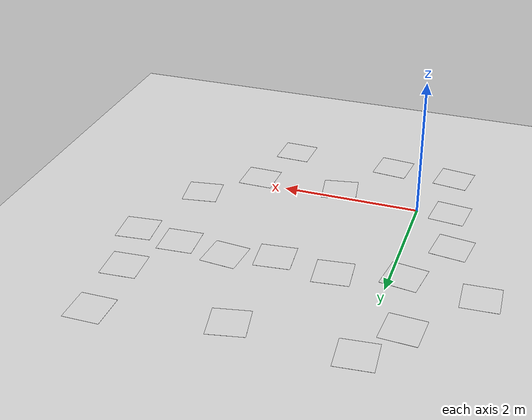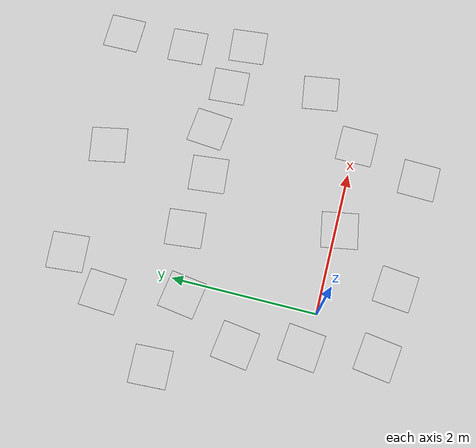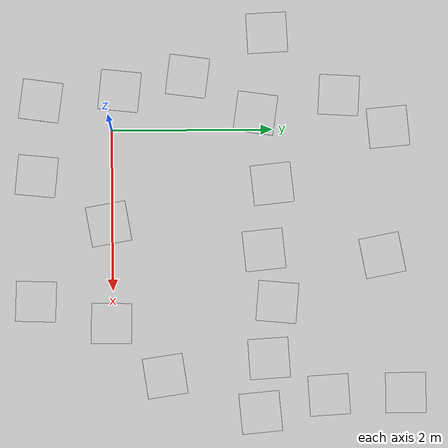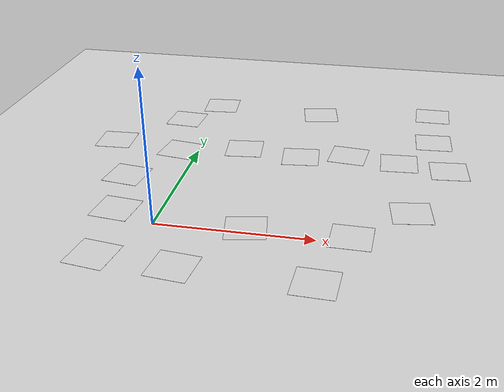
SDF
<sdf version="1.7">
 <world name="default">
  <plugin filename="gz-sim-physics-system" name="gz::sim::systems::Physics"/>
  <plugin filename="gz-sim-scene-broadcaster-system" name="gz::sim::systems::SceneBroadcaster"/>
  <plugin filename="gz-sim-user-commands-system" name="gz::sim::systems::UserCommands"/>
  <plugin filename="gz-sim-sensors-system" name="gz::sim::systems::Sensors">
   <render_engine>ogre2</render_engine>
  </plugin>
  <light name="sun" type="directional">
   <cast_shadows>0</cast_shadows>
   <intensity>3</intensity>
   <pose>0 0 10 0 -0 0</pose>
   <diffuse>0.8 0.8 0.8 1</diffuse>
   <specular>0.2 0.2 0.2 1</specular>
   <attenuation>
    <range>1000</range>
    <constant>0.9</constant>
    <linear>0.01</linear>
    <quadratic>0.001</quadratic>
   </attenuation>
   <direction>-0.5 0.1 -0.9</direction>
   <spot><inner_angle>0</inner_angle><outer_angle>0</outer_angle><falloff>0</falloff></spot>
  </light>
  <model name="ground_plane">
   <static>1</static>
   <link name="link">
    <collision name="collision">
     <geometry><plane><normal>0 0 1</normal><size>100 100</size></plane></geometry>
     <surface>
      <contact><collide_bitmask>65535</collide_bitmask></contact>
      <friction><ode><mu>100</mu><mu2>50</mu2></ode></friction>
     </surface>
    </collision>
    <visual name="visual">
     <cast_shadows>0</cast_shadows>
     <geometry><plane><normal>0 0 1</normal><size>100 100</size></plane></geometry>
     <material>
      <script><uri>file://media/materials/scripts/gazebo.material</uri><name>Gazebo/Grey</name></script>
     </material>
    </visual>
   </link>
  </model>
  <gravity>0 0 -9.8</gravity>
  <magnetic_field>6e-06 2.3e-05 -4.2e-05</magnetic_field>
  <atmosphere type="adiabatic"/>
  <physics type="ode">
   <max_step_size>0.001</max_step_size>
   <real_time_factor>1</real_time_factor>
   <real_time_update_rate>1000</real_time_update_rate>
  </physics>
  <scene><ambient>0.4 0.4 0.4 1</ambient><background>0.7 0.7 0.7 1</background><shadows>1</shadows></scene>
  <spherical_coordinates>
   <surface_model>EARTH_WGS84</surface_model>
   <latitude_deg>0</latitude_deg>
   <longitude_deg>0</longitude_deg>
   <elevation>0</elevation>
   <heading_deg>0</heading_deg>
  </spherical_coordinates>
  <model name="asphalt_plane">
   <static>1</static>
   <link name="link">
    <collision name="collision"><geometry><box><size>20 20 0.1</size></box></geometry></collision>
    <visual name="visual">
     <cast_shadows>0</cast_shadows>
     <geometry><box><size>20 20 0.1</size></box></geometry>
     <material>
      <ambient>0.8 0.8 0.8 1</ambient>
      <diffuse>0.8 0.8 0.8 1</diffuse>
      <specular>0.5 0.5 0.5 1</specular>
      <pbr><metal><albedo_map>model://asphalt_plane/tarmac.png</albedo_map></metal></pbr>
     </material>
    </visual>
   </link>
  </model>
  <model name="ArUco_0">
   <static>true</static>
   <pose>2.13 -0.957 0.11 0 0 -0.0317</pose>
   <link name="link">
    <collision name="collision">
     <geometry><plane><normal>0 0 1</normal><size>0.5 0.5</size></plane></geometry>
     <surface><friction><ode><mu>100</mu><mu2>50</mu2></ode></friction></surface>
    </collision>
    <visual name="visual">
     <cast_shadows>false</cast_shadows>
     <geometry><plane><normal>0 0 1</normal><size>0.5 0.5</size></plane></geometry>
     <material>
      <ambient>0.8 0.8 0.8 1</ambient>
      <diffuse>0.8 0.8 0.8 1</diffuse>
      <specular>0.5 0.5 0.5 1</specular>
      <pbr><metal><albedo_map>model://ArUco/4X4_1000-0.png</albedo_map></metal></pbr>
     </material>
    </visual>
   </link>
  </model>
  <model name="ArUco_1">
   <static>true</static>
   <pose>0.565 -0.94 0.11 0 0 -0.102</pose>
   <link name="link">
    <collision name="collision">
     <geometry><plane><normal>0 0 1</normal><size>0.5 0.5</size></plane></geometry>
     <surface><friction><ode><mu>100</mu><mu2>50</mu2></ode></friction></surface>
    </collision>
    <visual name="visual">
     <cast_shadows>false</cast_shadows>
     <geometry><plane><normal>0 0 1</normal><size>0.5 0.5</size></plane></geometry>
     <material>
      <ambient>0.8 0.8 0.8 1</ambient>
      <diffuse>0.8 0.8 0.8 1</diffuse>
      <specular>0.5 0.5 0.5 1</specular>
      <pbr><metal><albedo_map>model://ArUco/4X4_1000-1.png</albedo_map></metal></pbr>
     </material>
    </visual>
   </link>
  </model>
  <model name="ArUco_2">
   <static>true</static>
   <pose>3.3 3.62 0.11 0 0 0.00088</pose>
   <link name="link">
    <collision name="collision">
     <geometry><plane><normal>0 0 1</normal><size>0.5 0.5</size></plane></geometry>
     <surface><friction><ode><mu>100</mu><mu2>50</mu2></ode></friction></surface>
    </collision>
    <visual name="visual">
     <cast_shadows>false</cast_shadows>
     <geometry><plane><normal>0 0 1</normal><size>0.5 0.5</size></plane></geometry>
     <material>
      <ambient>0.8 0.8 0.8 1</ambient>
      <diffuse>0.8 0.8 0.8 1</diffuse>
      <specular>0.5 0.5 0.5 1</specular>
      <pbr><metal><albedo_map>model://ArUco/4X4_1000-2.png</albedo_map></metal></pbr>
     </material>
    </visual>
   </link>
  </model>
  <model name="ArUco_3">
   <static>true</static>
   <pose>1.59 3.35 0.11 0 0 0.191</pose>
   <link name="link">
    <collision name="collision">
     <geometry><plane><normal>0 0 1</normal><size>0.5 0.5</size></plane></geometry>
     <surface><friction><ode><mu>100</mu><mu2>50</mu2></ode></friction></surface>
    </collision>
    <visual name="visual">
     <cast_shadows>false</cast_shadows>
     <geometry><plane><normal>0 0 1</normal><size>0.5 0.5</size></plane></geometry>
     <material>
      <ambient>0.8 0.8 0.8 1</ambient>
      <diffuse>0.8 0.8 0.8 1</diffuse>
      <specular>0.5 0.5 0.5 1</specular>
      <pbr><metal><albedo_map>model://ArUco/4X4_1000-3.png</albedo_map></metal></pbr>
     </material>
    </visual>
   </link>
  </model>
  <model name="ArUco_4">
   <static>true</static>
   <pose>-0.376 -0.884 0.11 0 0 -0.138</pose>
   <link name="link">
    <collision name="collision">
     <geometry><plane><normal>0 0 1</normal><size>0.5 0.5</size></plane></geometry>
     <surface><friction><ode><mu>100</mu><mu2>50</mu2></ode></friction></surface>
    </collision>
    <visual name="visual">
     <cast_shadows>false</cast_shadows>
     <geometry><plane><normal>0 0 1</normal><size>0.5 0.5</size></plane></geometry>
     <material>
      <ambient>0.8 0.8 0.8 1</ambient>
      <diffuse>0.8 0.8 0.8 1</diffuse>
      <specular>0.5 0.5 0.5 1</specular>
      <pbr><metal><albedo_map>model://ArUco/4X4_1000-4.png</albedo_map></metal></pbr>
     </material>
    </visual>
   </link>
  </model>
  <model name="ArUco_5">
   <static>true</static>
   <pose>0.686 1.99 0.11 0 0 0.105</pose>
   <link name="link">
    <collision name="collision">
     <geometry><plane><normal>0 0 1</normal><size>0.5 0.5</size></plane></geometry>
     <surface><friction><ode><mu>100</mu><mu2>50</mu2></ode></friction></surface>
    </collision>
    <visual name="visual">
     <cast_shadows>false</cast_shadows>
     <geometry><plane><normal>0 0 1</normal><size>0.5 0.5</size></plane></geometry>
     <material>
      <ambient>0.8 0.8 0.8 1</ambient>
      <diffuse>0.8 0.8 0.8 1</diffuse>
      <specular>0.5 0.5 0.5 1</specular>
      <pbr><metal><albedo_map>model://ArUco/4X4_1000-5.png</albedo_map></metal></pbr>
     </material>
    </visual>
   </link>
  </model>
  <model name="ArUco_6">
   <static>true</static>
   <pose>1.51 1.88 0.11 0 0 0.0995</pose>
   <link name="link">
    <collision name="collision">
     <geometry><plane><normal>0 0 1</normal><size>0.5 0.5</size></plane></geometry>
     <surface><friction><ode><mu>100</mu><mu2>50</mu2></ode></friction></surface>
    </collision>
    <visual name="visual">
     <cast_shadows>false</cast_shadows>
     <geometry><plane><normal>0 0 1</normal><size>0.5 0.5</size></plane></geometry>
     <material>
      <ambient>0.8 0.8 0.8 1</ambient>
      <diffuse>0.8 0.8 0.8 1</diffuse>
      <specular>0.5 0.5 0.5 1</specular>
      <pbr><metal><albedo_map>model://ArUco/4X4_1000-6.png</albedo_map></metal></pbr>
     </material>
    </visual>
   </link>
  </model>
  <model name="ArUco_7">
   <static>true</static>
   <pose>3.32 2.67 0.11 0 0 0.0604</pose>
   <link name="link">
    <collision name="collision">
     <geometry><plane><normal>0 0 1</normal><size>0.5 0.5</size></plane></geometry>
     <surface><friction><ode><mu>100</mu><mu2>50</mu2></ode></friction></surface>
    </collision>
    <visual name="visual">
     <cast_shadows>false</cast_shadows>
     <geometry><plane><normal>0 0 1</normal><size>0.5 0.5</size></plane></geometry>
     <material>
      <ambient>0.8 0.8 0.8 1</ambient>
      <diffuse>0.8 0.8 0.8 1</diffuse>
      <specular>0.5 0.5 0.5 1</specular>
      <pbr><metal><albedo_map>model://ArUco/4X4_1000-7.png</albedo_map></metal></pbr>
     </material>
    </visual>
   </link>
  </model>
  <model name="ArUco_8">
   <static>true</static>
   <pose>1.17 -0.0484 0.11 0 0 0.174</pose>
   <link name="link">
    <collision name="collision">
     <geometry><plane><normal>0 0 1</normal><size>0.5 0.5</size></plane></geometry>
     <surface><friction><ode><mu>100</mu><mu2>50</mu2></ode></friction></surface>
    </collision>
    <visual name="visual">
     <cast_shadows>false</cast_shadows>
     <geometry><plane><normal>0 0 1</normal><size>0.5 0.5</size></plane></geometry>
     <material>
      <ambient>0.8 0.8 0.8 1</ambient>
      <diffuse>0.8 0.8 0.8 1</diffuse>
      <specular>0.5 0.5 0.5 1</specular>
      <pbr><metal><albedo_map>model://ArUco/4X4_1000-8.png</albedo_map></metal></pbr>
     </material>
    </visual>
   </link>
  </model>
  <model name="ArUco_9">
   <static>true</static>
   <pose>-0.0121 3.44 0.11 0 0 0.0876</pose>
   <link name="link">
    <collision name="collision">
     <geometry><plane><normal>0 0 1</normal><size>0.5 0.5</size></plane></geometry>
     <surface><friction><ode><mu>100</mu><mu2>50</mu2></ode></friction></surface>
    </collision>
    <visual name="visual">
     <cast_shadows>false</cast_shadows>
     <geometry><plane><normal>0 0 1</normal><size>0.5 0.5</size></plane></geometry>
     <material>
      <ambient>0.8 0.8 0.8 1</ambient>
      <diffuse>0.8 0.8 0.8 1</diffuse>
      <specular>0.5 0.5 0.5 1</specular>
      <pbr><metal><albedo_map>model://ArUco/4X4_1000-9.png</albedo_map></metal></pbr>
     </material>
    </visual>
   </link>
  </model>
  <model name="ArUco_10">
   <static>true</static>
   <pose>2.86 1.93 0.11 0 0 0.0593</pose>
   <link name="link">
    <collision name="collision">
     <geometry><plane><normal>0 0 1</normal><size>0.5 0.5</size></plane></geometry>
     <surface><friction><ode><mu>100</mu><mu2>50</mu2></ode></friction></surface>
    </collision>
    <visual name="visual">
     <cast_shadows>false</cast_shadows>
     <geometry><plane><normal>0 0 1</normal><size>0.5 0.5</size></plane></geometry>
     <material>
      <ambient>0.8 0.8 0.8 1</ambient>
      <diffuse>0.8 0.8 0.8 1</diffuse>
      <specular>0.5 0.5 0.5 1</specular>
      <pbr><metal><albedo_map>model://ArUco/4X4_1000-10.png</albedo_map></metal></pbr>
     </material>
    </visual>
   </link>
  </model>
  <model name="ArUco_11">
   <static>true</static>
   <pose>3.07 0.64 0.11 0 0 0.147</pose>
   <link name="link">
    <collision name="collision">
     <geometry><plane><normal>0 0 1</normal><size>0.5 0.5</size></plane></geometry>
     <surface><friction><ode><mu>100</mu><mu2>50</mu2></ode></friction></surface>
    </collision>
    <visual name="visual">
     <cast_shadows>false</cast_shadows>
     <geometry><plane><normal>0 0 1</normal><size>0.5 0.5</size></plane></geometry>
     <material>
      <ambient>0.8 0.8 0.8 1</ambient>
      <diffuse>0.8 0.8 0.8 1</diffuse>
      <specular>0.5 0.5 0.5 1</specular>
      <pbr><metal><albedo_map>model://ArUco/4X4_1000-11.png</albedo_map></metal></pbr>
     </material>
    </visual>
   </link>
  </model>
  <model name="ArUco_12">
   <static>true</static>
   <pose>-0.669 0.947 0.11 0 0 -0.131</pose>
   <link name="link">
    <collision name="collision">
     <geometry><plane><normal>0 0 1</normal><size>0.5 0.5</size></plane></geometry>
     <surface><friction><ode><mu>100</mu><mu2>50</mu2></ode></friction></surface>
    </collision>
    <visual name="visual">
     <cast_shadows>false</cast_shadows>
     <geometry><plane><normal>0 0 1</normal><size>0.5 0.5</size></plane></geometry>
     <material>
      <ambient>0.8 0.8 0.8 1</ambient>
      <diffuse>0.8 0.8 0.8 1</diffuse>
      <specular>0.5 0.5 0.5 1</specular>
      <pbr><metal><albedo_map>model://ArUco/4X4_1000-12.png</albedo_map></metal></pbr>
     </material>
    </visual>
   </link>
  </model>
  <model name="ArUco_13">
   <static>true</static>
   <pose>-0.199 1.79 0.11 0 0 -0.142</pose>
   <link name="link">
    <collision name="collision">
     <geometry><plane><normal>0 0 1</normal><size>0.5 0.5</size></plane></geometry>
     <surface><friction><ode><mu>100</mu><mu2>50</mu2></ode></friction></surface>
    </collision>
    <visual name="visual">
     <cast_shadows>false</cast_shadows>
     <geometry><plane><normal>0 0 1</normal><size>0.5 0.5</size></plane></geometry>
     <material>
      <ambient>0.8 0.8 0.8 1</ambient>
      <diffuse>0.8 0.8 0.8 1</diffuse>
      <specular>0.5 0.5 0.5 1</specular>
      <pbr><metal><albedo_map>model://ArUco/4X4_1000-13.png</albedo_map></metal></pbr>
     </material>
    </visual>
   </link>
  </model>
  <model name="ArUco_14">
   <static>true</static>
   <pose>-0.492 0.0981 0.11 0 0 -0.107</pose>
   <link name="link">
    <collision name="collision">
     <geometry><plane><normal>0 0 1</normal><size>0.5 0.5</size></plane></geometry>
     <surface><friction><ode><mu>100</mu><mu2>50</mu2></ode></friction></surface>
    </collision>
    <visual name="visual">
     <cast_shadows>false</cast_shadows>
     <geometry><plane><normal>0 0 1</normal><size>0.5 0.5</size></plane></geometry>
     <material>
      <ambient>0.8 0.8 0.8 1</ambient>
      <diffuse>0.8 0.8 0.8 1</diffuse>
      <specular>0.5 0.5 0.5 1</specular>
      <pbr><metal><albedo_map>model://ArUco/4X4_1000-14.png</albedo_map></metal></pbr>
     </material>
    </visual>
   </link>
  </model>
  <model name="ArUco_15">
   <static>true</static>
   <pose>-1.205 1.94 0.11 0 0 0.0483</pose>
   <link name="link">
    <collision name="collision">
     <geometry><plane><normal>0 0 1</normal><size>0.5 0.5</size></plane></geometry>
     <surface><friction><ode><mu>100</mu><mu2>50</mu2></ode></friction></surface>
    </collision>
    <visual name="visual">
     <cast_shadows>false</cast_shadows>
     <geometry><plane><normal>0 0 1</normal><size>0.5 0.5</size></plane></geometry>
     <material>
      <ambient>0.8 0.8 0.8 1</ambient>
      <diffuse>0.8 0.8 0.8 1</diffuse>
      <specular>0.5 0.5 0.5 1</specular>
      <pbr><metal><albedo_map>model://ArUco/4X4_1000-15.png</albedo_map></metal></pbr>
     </material>
    </visual>
   </link>
  </model>
  <model name="ArUco_16">
   <static>true</static>
   <pose>-0.416 2.83 0.11 0 0 -0.0588</pose>
   <link name="link">
    <collision name="collision">
     <geometry><plane><normal>0 0 1</normal><size>0.5 0.5</size></plane></geometry>
     <surface><friction><ode><mu>100</mu><mu2>50</mu2></ode></friction></surface>
    </collision>
    <visual name="visual">
     <cast_shadows>false</cast_shadows>
     <geometry><plane><normal>0 0 1</normal><size>0.5 0.5</size></plane></geometry>
     <material>
      <ambient>0.8 0.8 0.8 1</ambient>
      <diffuse>0.8 0.8 0.8 1</diffuse>
      <specular>0.5 0.5 0.5 1</specular>
      <pbr><metal><albedo_map>model://ArUco/4X4_1000-16.png</albedo_map></metal></pbr>
     </material>
    </visual>
   </link>
  </model>
  <model name="ArUco_17">
   <static>true</static>
   <pose>3.53 1.82 0.11 0 0 0.092</pose>
   <link name="link">
    <collision name="collision">
     <geometry><plane><normal>0 0 1</normal><size>0.5 0.5</size></plane></geometry>
     <surface><friction><ode><mu>100</mu><mu2>50</mu2></ode></friction></surface>
    </collision>
    <visual name="visual">
     <cast_shadows>false</cast_shadows>
     <geometry><plane><normal>0 0 1</normal><size>0.5 0.5</size></plane></geometry>
     <material>
      <ambient>0.8 0.8 0.8 1</ambient>
      <diffuse>0.8 0.8 0.8 1</diffuse>
      <specular>0.5 0.5 0.5 1</specular>
      <pbr><metal><albedo_map>model://ArUco/4X4_1000-17.png</albedo_map></metal></pbr>
     </material>
    </visual>
   </link>
  </model>
  <model name="ArUco_18">
   <static>true</static>
   <pose>2.41 -0.0208 0.11 0 0 -0.0151</pose>
   <link name="link">
    <collision name="collision">
     <geometry><plane><normal>0 0 1</normal><size>0.5 0.5</size></plane></geometry>
     <surface><friction><ode><mu>100</mu><mu2>50</mu2></ode></friction></surface>
    </collision>
    <visual name="visual">
     <cast_shadows>false</cast_shadows>
     <geometry><plane><normal>0 0 1</normal><size>0.5 0.5</size></plane></geometry>
     <material>
      <ambient>0.8 0.8 0.8 1</ambient>
      <diffuse>0.8 0.8 0.8 1</diffuse>
      <specular>0.5 0.5 0.5 1</specular>
      <pbr><metal><albedo_map>model://ArUco/4X4_1000-18.png</albedo_map></metal></pbr>
     </material>
    </visual>
   </link>
  </model>
  <model name="ArUco_19">
   <static>true</static>
   <pose>2.16 2.04 0.11 0 0 -0.09</pose>
   <link name="link">
    <collision name="collision">
     <geometry><plane><normal>0 0 1</normal><size>0.5 0.5</size></plane></geometry>
     <surface><friction><ode><mu>100</mu><mu2>50</mu2></ode></friction></surface>
    </collision>
    <visual name="visual">
     <cast_shadows>false</cast_shadows>
     <geometry><plane><normal>0 0 1</normal><size>0.5 0.5</size></plane></geometry>
     <material>
      <ambient>0.8 0.8 0.8 1</ambient>
      <diffuse>0.8 0.8 0.8 1</diffuse>
      <specular>0.5 0.5 0.5 1</specular>
      <pbr><metal><albedo_map>model://ArUco/4X4_1000-19.png</albedo_map></metal></pbr>
     </material>
    </visual>
   </link>
  </model>
 </world>
</sdf>
